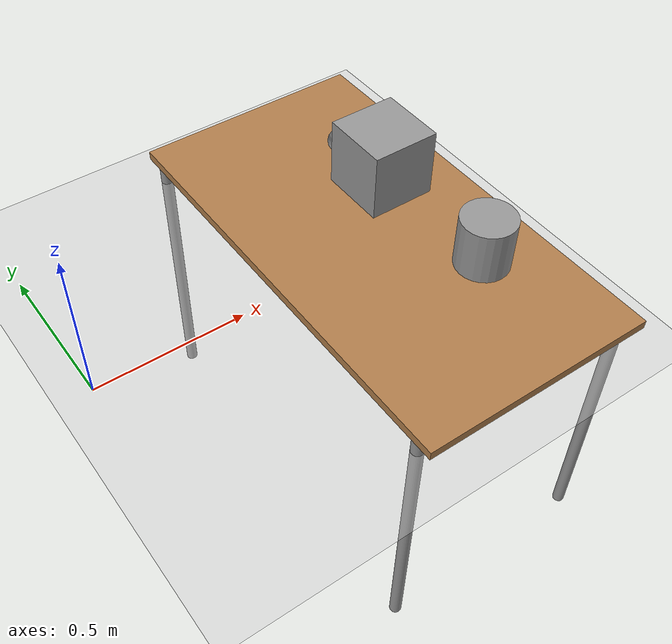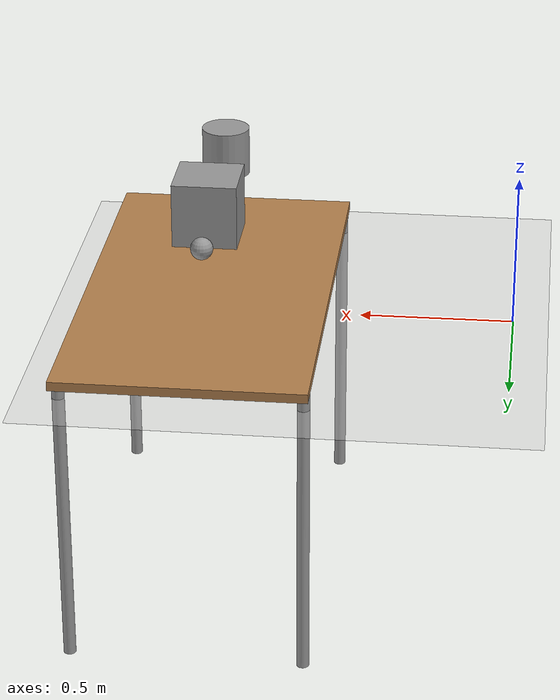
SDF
<sdf version="1.6">
 <world name="default">
  <light name="sun" type="directional">
   <pose>0 0 10 0 -0 0</pose>
   <diffuse>0.8 0.8 0.8 1</diffuse>
   <specular>0.2 0.2 0.2 1</specular>
   <attenuation>
    <range>1000</range>
    <constant>0.9</constant>
    <linear>0.01</linear>
    <quadratic>0.001</quadratic>
   </attenuation>
   <direction>-0.5 0.1 -0.9</direction>
  </light>
  <model name="ground_plane">
   <static>1</static>
   <link name="link">
    <collision name="collision">
     <geometry><plane><normal>0 0 1</normal><size>100 100</size></plane></geometry>
     <surface>
      <contact><collide_bitmask>65535</collide_bitmask></contact>
      <friction><ode><mu>100</mu><mu2>50</mu2></ode></friction>
     </surface>
    </collision>
    <visual name="visual">
     <cast_shadows>0</cast_shadows>
     <geometry><plane><normal>0 0 1</normal><size>100 100</size></plane></geometry>
     <material>
      <script><uri>file://media/materials/scripts/gazebo.material</uri><name>Gazebo/Grey</name></script>
     </material>
    </visual>
   </link>
  </model>
  <gravity>0 0 -9.8</gravity>
  <magnetic_field>6e-06 2.3e-05 -4.2e-05</magnetic_field>
  <atmosphere type="adiabatic"/>
  <physics name="default_physics" default="0" type="ode">
   <max_step_size>0.001</max_step_size>
   <real_time_factor>1</real_time_factor>
   <real_time_update_rate>1000</real_time_update_rate>
  </physics>
  <scene><ambient>0.4 0.4 0.4 1</ambient><background>0.7 0.7 0.7 1</background><shadows>1</shadows></scene>
  <spherical_coordinates>
   <surface_model>EARTH_WGS84</surface_model>
   <latitude_deg>0</latitude_deg>
   <longitude_deg>0</longitude_deg>
   <elevation>0</elevation>
   <heading_deg>0</heading_deg>
  </spherical_coordinates>
  <model name="test">
   <link name="link_0">
    <inertial>
     <mass>0.009385</mass>
     <inertia>
      <ixx>6.959e-05</ixx>
      <ixy>0</ixy>
      <ixz>0</ixz>
      <iyy>6.959e-05</iyy>
      <iyz>0</iyz>
      <izz>6.959e-05</izz>
     </inertia>
    </inertial>
    <pose>0 0 0.65 0 -0 0</pose>
    <visual name="visual">
     <geometry><box><size>0.210933 0.210933 0.210933</size></box></geometry>
     <material>
      <lighting>1</lighting>
      <script><uri>file://media/materials/scripts/gazebo.material</uri><name>Gazebo/Grey</name></script>
      <shader type="pixel"><normal_map>__default__</normal_map></shader>
      <ambient>0.3 0.3 0.3 1</ambient>
      <diffuse>0.7 0.7 0.7 1</diffuse>
      <specular>0.01 0.01 0.01 1</specular>
      <emissive>0 0 0 1</emissive>
     </material>
    </visual>
    <collision name="collision">
     <geometry><box><size>0.210933 0.210933 0.210933</size></box></geometry>
     <surface>
      <friction>
       <ode><mu>1</mu><mu2>1</mu2><fdir1>0 0 0</fdir1><slip1>0</slip1><slip2>0</slip2></ode>
       <torsional>
        <coefficient>1</coefficient>
        <patch_radius>0</patch_radius>
        <surface_radius>0</surface_radius>
        <use_patch_radius>1</use_patch_radius>
        <ode><slip>0</slip></ode>
       </torsional>
      </friction>
      <bounce><restitution_coefficient>0</restitution_coefficient><threshold>1e+06</threshold></bounce>
      <contact>
       <collide_without_contact>0</collide_without_contact>
       <collide_without_contact_bitmask>1</collide_without_contact_bitmask>
       <collide_bitmask>1</collide_bitmask>
       <ode>
        <soft_cfm>0</soft_cfm>
        <soft_erp>0.2</soft_erp>
        <kp>1e+13</kp>
        <kd>1</kd>
        <max_vel>0.01</max_vel>
        <min_depth>0</min_depth>
       </ode>
       <bullet>
        <split_impulse>1</split_impulse>
        <split_impulse_penetration_threshold>-0.01</split_impulse_penetration_threshold>
        <soft_cfm>0</soft_cfm>
        <soft_erp>0.2</soft_erp>
        <kp>1e+13</kp>
        <kd>1</kd>
       </bullet>
      </contact>
     </surface>
    </collision>
   </link>
   <model name="table">
    <static>1</static>
    <link name="link">
     <collision name="surface">
      <pose>0 0 1 0 -0 0</pose>
      <geometry><box><size>1.5 0.8 0.03</size></box></geometry>
      <surface><friction><ode><mu>0.6</mu><mu2>0.6</mu2></ode></friction></surface>
     </collision>
     <visual name="visual1">
      <pose>0 0 1 0 -0 0</pose>
      <geometry><box><size>1.5 0.8 0.03</size></box></geometry>
      <material>
       <script><uri>file://media/materials/scripts/gazebo.material</uri><name>Gazebo/Wood</name></script>
      </material>
     </visual>
     <collision name="front_left_leg">
      <pose>0.68 0.38 0.5 0 -0 0</pose>
      <geometry><cylinder><radius>0.02</radius><length>1</length></cylinder></geometry>
     </collision>
     <visual name="front_left_leg">
      <pose>0.68 0.38 0.5 0 -0 0</pose>
      <geometry><cylinder><radius>0.02</radius><length>1</length></cylinder></geometry>
      <material>
       <script><uri>file://media/materials/scripts/gazebo.material</uri><name>Gazebo/Grey</name></script>
      </material>
     </visual>
     <collision name="front_right_leg">
      <pose>0.68 -0.38 0.5 0 -0 0</pose>
      <geometry><cylinder><radius>0.02</radius><length>1</length></cylinder></geometry>
     </collision>
     <visual name="front_right_leg">
      <pose>0.68 -0.38 0.5 0 -0 0</pose>
      <geometry><cylinder><radius>0.02</radius><length>1</length></cylinder></geometry>
      <material>
       <script><uri>file://media/materials/scripts/gazebo.material</uri><name>Gazebo/Grey</name></script>
      </material>
     </visual>
     <collision name="back_right_leg">
      <pose>-0.68 -0.38 0.5 0 -0 0</pose>
      <geometry><cylinder><radius>0.02</radius><length>1</length></cylinder></geometry>
     </collision>
     <visual name="back_right_leg">
      <pose>-0.68 -0.38 0.5 0 -0 0</pose>
      <geometry><cylinder><radius>0.02</radius><length>1</length></cylinder></geometry>
      <material>
       <script><uri>file://media/materials/scripts/gazebo.material</uri><name>Gazebo/Grey</name></script>
      </material>
     </visual>
     <collision name="back_left_leg">
      <pose>-0.68 0.38 0.5 0 -0 0</pose>
      <geometry><cylinder><radius>0.02</radius><length>1</length></cylinder></geometry>
     </collision>
     <visual name="back_left_leg">
      <pose>-0.68 0.38 0.5 0 -0 0</pose>
      <geometry><cylinder><radius>0.02</radius><length>1</length></cylinder></geometry>
      <material>
       <script><uri>file://media/materials/scripts/gazebo.material</uri><name>Gazebo/Grey</name></script>
      </material>
     </visual>
    </link>
    <pose>0 0 -0.65 0 -0 0</pose>
   </model>
   <static>0</static>
   <pose>1 -0 -0.281016 1e-06 -1.7e-05 1.5708</pose>
  </model>
  <model name="Untitled">
   <link name="link_0">
    <inertial>
     <mass>0.000390951</mass>
     <inertia>
      <ixx>2.09029e-07</ixx>
      <ixy>0</ixy>
      <ixz>0</ixz>
      <iyy>2.09029e-07</iyy>
      <iyz>0</iyz>
      <izz>2.09029e-07</izz>
     </inertia>
    </inertial>
    <pose>-0.002635 0.325616 -0.039918 0 -0 0</pose>
    <visual name="visual">
     <geometry><sphere><radius>0.0365605</radius></sphere></geometry>
     <material>
      <lighting>1</lighting>
      <script><uri>file://media/materials/scripts/gazebo.material</uri><name>Gazebo/Grey</name></script>
      <shader type="pixel"/>
     </material>
    </visual>
    <collision name="collision">
     <geometry><sphere><radius>0.03656</radius></sphere></geometry>
     <surface>
      <friction>
       <ode><mu>1</mu><mu2>1</mu2><fdir1>0 0 0</fdir1><slip1>0</slip1><slip2>0</slip2></ode>
       <torsional>
        <coefficient>1</coefficient>
        <patch_radius>0</patch_radius>
        <surface_radius>0</surface_radius>
        <use_patch_radius>1</use_patch_radius>
        <ode><slip>0</slip></ode>
       </torsional>
      </friction>
      <bounce><restitution_coefficient>0</restitution_coefficient><threshold>1e+06</threshold></bounce>
      <contact>
       <collide_without_contact>0</collide_without_contact>
       <collide_without_contact_bitmask>1</collide_without_contact_bitmask>
       <collide_bitmask>1</collide_bitmask>
       <ode>
        <soft_cfm>0</soft_cfm>
        <soft_erp>0.2</soft_erp>
        <kp>1e+13</kp>
        <kd>1</kd>
        <max_vel>0.01</max_vel>
        <min_depth>0</min_depth>
       </ode>
       <bullet>
        <split_impulse>1</split_impulse>
        <split_impulse_penetration_threshold>-0.01</split_impulse_penetration_threshold>
        <soft_cfm>0</soft_cfm>
        <soft_erp>0.2</soft_erp>
        <kp>1e+13</kp>
        <kd>1</kd>
       </bullet>
      </contact>
     </surface>
    </collision>
   </link>
   <link name="link_1">
    <inertial>
     <mass>0.00411728</mass>
     <inertia>
      <ixx>1.54248e-05</ixx>
      <ixy>0</ixy>
      <ixz>0</ixz>
      <iyy>1.54248e-05</iyy>
      <iyz>0</iyz>
      <izz>1.32212e-05</izz>
     </inertia>
    </inertial>
    <pose>0.002636 -0.325616 0.039918 0 -0 0</pose>
    <visual name="visual">
     <geometry><cylinder><radius>0.0801392</radius><length>0.160279</length></cylinder></geometry>
     <material>
      <lighting>1</lighting>
      <script><uri>file://media/materials/scripts/gazebo.material</uri><name>Gazebo/Grey</name></script>
      <shader type="pixel"/>
     </material>
    </visual>
    <collision name="collision">
     <geometry><cylinder><radius>0.080139</radius><length>0.160279</length></cylinder></geometry>
     <surface>
      <friction>
       <ode><mu>1</mu><mu2>1</mu2><fdir1>0 0 0</fdir1><slip1>0</slip1><slip2>0</slip2></ode>
       <torsional>
        <coefficient>1</coefficient>
        <patch_radius>0</patch_radius>
        <surface_radius>0</surface_radius>
        <use_patch_radius>1</use_patch_radius>
        <ode><slip>0</slip></ode>
       </torsional>
      </friction>
      <bounce><restitution_coefficient>0</restitution_coefficient><threshold>1e+06</threshold></bounce>
      <contact>
       <collide_without_contact>0</collide_without_contact>
       <collide_without_contact_bitmask>1</collide_without_contact_bitmask>
       <collide_bitmask>1</collide_bitmask>
       <ode>
        <soft_cfm>0</soft_cfm>
        <soft_erp>0.2</soft_erp>
        <kp>1e+13</kp>
        <kd>1</kd>
        <max_vel>0.01</max_vel>
        <min_depth>0</min_depth>
       </ode>
       <bullet>
        <split_impulse>1</split_impulse>
        <split_impulse_penetration_threshold>-0.01</split_impulse_penetration_threshold>
        <soft_cfm>0</soft_cfm>
        <soft_erp>0.2</soft_erp>
        <kp>1e+13</kp>
        <kd>1</kd>
       </bullet>
      </contact>
     </surface>
    </collision>
   </link>
   <static>0</static>
   <pose>0.997365 -0.123513 0.344696 0 -0 0</pose>
  </model>
 </world>
</sdf>
